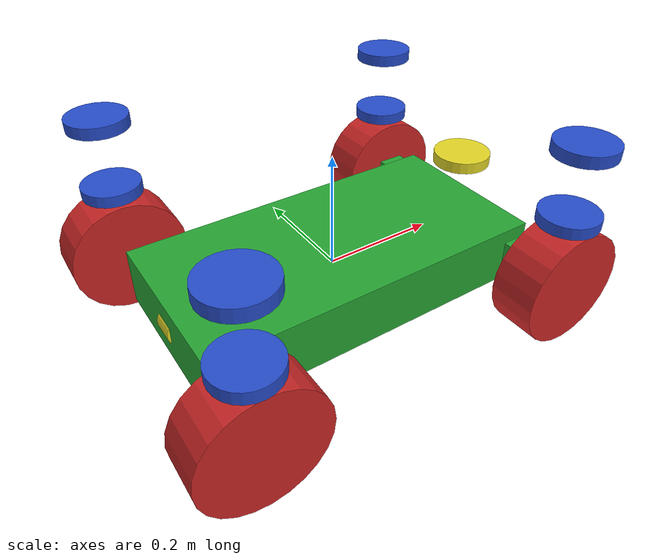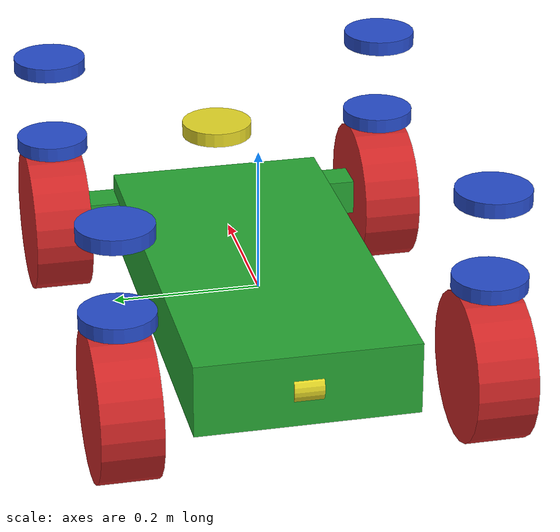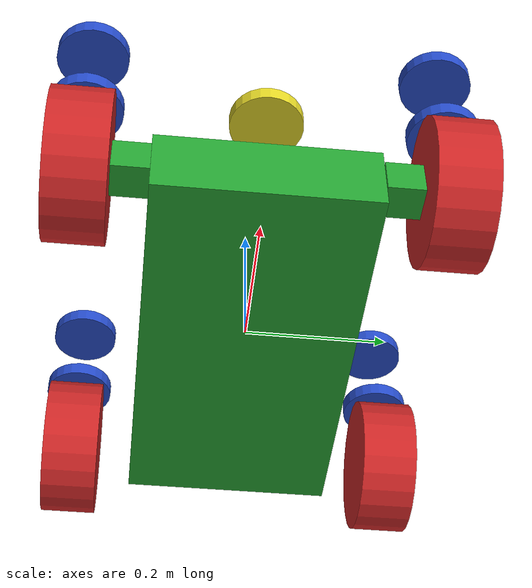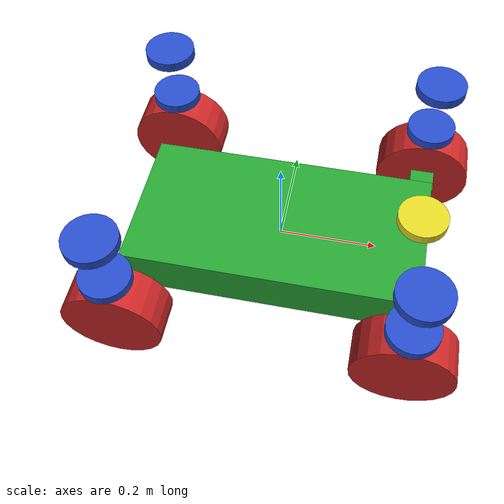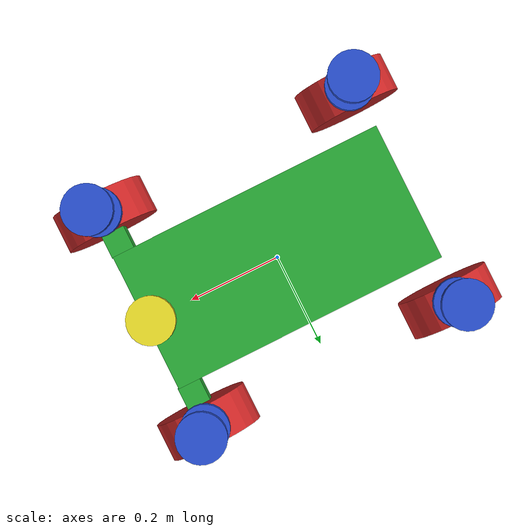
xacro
<?xml version="1.0"?>
<robot name="steer_bot" xmlns:xacro="http://wiki.ros.org/xacro">
  <!-- Include xacro for inertials, materials and wheels -->
  <xacro:include filename="$(find steer_bot_description)/urdf/wheel.xacro"/>

  <xacro:property name="robot_namespace" value="/steer_bot"/>

  <!-- Gazebo plugins -->
  <gazebo>
    <!-- Load ros_control plugin using the steer_bot_hardware_gazebo
    implementation of the hardware_interface::RobotHW -->
    <plugin name="gazebo_ros_control" filename="libgazebo_ros_control.so">
      <robotNamespace>${robot_namespace}</robotNamespace>
      <robotSimType>steer_bot_hardware_gazebo/SteerBotHardwareGazebo</robotSimType>
      <legacyModeNS>false</legacyModeNS>
    </plugin>
  </gazebo>

  <!-- Math constants -->
  <xacro:property name="deg_to_rad" value="0.01745329251994329577"/>

  <!-- Robot base dimensions -->
  <xacro:property name="base_length" value="0.6" />
  <xacro:property name="base_width" value="0.3" />
  <xacro:property name="base_height" value="0.1" />
  <xacro:property name="base_mass" value="5" />
  <!-- axle link -->
  <xacro:property name="axle_length" value="0.05"/>
  <xacro:property name="axle_mass" value="0.01"/>

  <!-- Wheel link dimensions -->
  <xacro:property name="wheel_radius" value="0.1" />
  <xacro:property name="wheel_thickness" value="0.08" />
  <xacro:property name="wheel_mass" value="1" />

  <!-- Steering link dimensions -->
  <xacro:property name="steer_radius" value="0.05" />
  <xacro:property name="steer_thickness" value="0.02" />
  <xacro:property name="steer_mass" value="1" />

  <!-- Axle positions -->
  <xacro:property name="axle_offset" value="0.09" />
  <xacro:property name="steer_offset" value="0.02" />

  <!-- Base link -->
  <link name="base_link">
    <visual>
      <origin xyz="0 0 0" rpy="0 0 0"/>
      <geometry>
        <box size="${base_length} ${base_width} ${base_height}"/>
      </geometry>
      <material name="green" />
    </visual>
    <collision>
      <origin xyz="0 0 0" rpy="0 0 0"/>
      <geometry>
        <box size="${base_length} ${base_width} ${base_height}"/>
      </geometry>
    </collision>
    <xacro:solid_cuboid_inertial
        rpy="0 0 0" xyz="0 0 0"
        mass="${base_mass}"
        x="${base_length}" y="${base_width}" z="${base_height}" />
  </link>

  <!-- Front steer and rear wheel joints required for ackermann_steering_controller -->
  <xacro:front_steer
    name="front"
    parent="base"
    steer_radius="${steer_radius}"
    steer_thickness="${steer_thickness}"
    steer_mass="${steer_mass}"
    base_length="${base_length}"
    base_width="${base_width}"
    axle_offset="${axle_offset}"
    steer_height="${wheel_radius+steer_offset}">
  </xacro:front_steer>

  <xacro:rear_wheel
    name="rear"
    parent="base"
    wheel_radius="${wheel_radius/4}"
    wheel_thickness="${wheel_thickness/2}"
    wheel_mass="${wheel_mass/32}">
    <origin xyz="${-base_length/2+steer_offset} 0 0" rpy="${-90 * deg_to_rad} 0 0"/>
  </xacro:rear_wheel>

  <!-- Steerable front wheels -->
  <xacro:front_wheel_lr
    name="front_right"
    parent="base"
    reflect="-1"
    wheel_radius="${wheel_radius}"
    wheel_thickness="${wheel_thickness}"
    wheel_mass="${wheel_mass}"
    steer_radius="${steer_radius}"
    steer_thickness="${steer_thickness}"
    steer_mass="${steer_mass}"
    axle_mass="${axle_mass}"
    axle_length="${axle_length}"
    base_length="${base_length}"
    base_width="${base_width}"
    axle_offset="${axle_offset}"
    steer_height="${wheel_radius+steer_offset}">
  </xacro:front_wheel_lr>
  <xacro:front_wheel_lr
    name="front_left"
    parent="base"
    reflect="1"
    wheel_radius="${wheel_radius}"
    axle_mass="${axle_mass}"
    axle_length="${axle_length}"
    wheel_thickness="${wheel_thickness}"
    wheel_mass="${wheel_mass}"
    steer_radius="${steer_radius}"
    steer_thickness="${steer_thickness}"
    steer_mass="${steer_mass}"
    base_length="${base_length}"
    base_width="${base_width}"
    axle_offset="${axle_offset}"
    steer_height="${wheel_radius+steer_offset}">
  </xacro:front_wheel_lr>

  <!-- Rear wheels -->
  <xacro:rear_wheel_lr
    name="rear_right"
    parent="base"
    reflect="-1"
    wheel_radius="${wheel_radius}"
    axle_mass="${axle_mass}"
    axle_length="${axle_length}"
    wheel_thickness="${wheel_thickness}"
    wheel_mass="${wheel_mass}"
    steer_radius="${steer_radius}"
    steer_thickness="${steer_thickness}"
    steer_mass="${steer_mass}"
    base_length="${base_length}"
    base_width="${base_width}"
    axle_offset="${axle_offset}"
    steer_height="${wheel_radius+steer_offset}">
  </xacro:rear_wheel_lr>
  <xacro:rear_wheel_lr
    name="rear_left"
    parent="base"
    reflect="1"
    wheel_radius="${wheel_radius}"
    axle_mass="${axle_mass}"
    axle_length="${axle_length}"
    wheel_thickness="${wheel_thickness}"
    wheel_mass="${wheel_mass}"
    steer_radius="${steer_radius}"
    steer_thickness="${steer_thickness}"
    steer_mass="${steer_mass}"
    base_length="${base_length}"
    base_width="${base_width}"
    axle_offset="${axle_offset}"
    steer_height="${wheel_radius+steer_offset}">

  </xacro:rear_wheel_lr>

  <!-- Colour -->
  <gazebo reference="base_link">
    <material>Gazebo/Green</material>
  </gazebo>

</robot>

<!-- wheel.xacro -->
<robot name="wheel" xmlns:xacro="http://wiki.ros.org/xacro">
  <!-- Include xacro for materials and inertials -->
  <xacro:include filename="$(find steer_bot_description)/urdf/materials.xacro"/>
  <xacro:include filename="$(find steer_bot_description)/urdf/inertials.xacro"/>

  <!-- Properties -->
  <xacro:property name="steer_effort" value="10.0"/>
  <xacro:property name="steer_velocity" value="5.0"/>
  <xacro:property name="steer_limit_deg" value="45.0"/>

  <!-- Bicycle model front steering link (required for steer_drive_controller) -->
  <xacro:macro name="front_steer"
    params="
      name
      parent
      steer_radius
      steer_thickness
      steer_mass
      base_length
      base_width
      axle_offset
      steer_height">
    <link name="${name}_steer_link">
      <visual>
        <origin xyz="0 0 0" rpy="0 0 0"/>
        <geometry>
          <cylinder radius="${steer_radius}" length="${steer_thickness}"/>
        </geometry>
        <material name="yellow" />
      </visual>
      <collision>
        <origin xyz="0 0 0" rpy="0 0 0"/>
        <geometry>
          <cylinder radius="${steer_radius}" length="${steer_thickness}"/>
        </geometry>
      </collision>
      <xacro:solid_cylinder_inertial
          rpy="0 0 0" xyz="0 0 0"
          mass="${steer_mass}"
          radius="${steer_radius}" length="${steer_thickness}" />
    </link>

    <joint name="${name}_steer_joint" type="revolute">
      <parent link="${parent}_link"/>
      <child link="${name}_steer_link"/>
      <origin xyz="${base_length/2-steer_offset} 0 ${steer_height}" rpy="0 0 0"/>
      <axis xyz="0 0 1"/>
      <limit effort="${steer_effort}"
             lower="${-180.0 * deg_to_rad}" upper="${180.0 * deg_to_rad}"
             velocity="${steer_velocity}"/>
    </joint>

    <transmission name="${name}_steer_joint_trans">
      <type>transmission_interface/SimpleTransmission</type>
      <actuator name="${name}_steer_joint_motor">
        <mechanicalReduction>1</mechanicalReduction>
        <hardwareInterface>hardware_interface/PositionJointInterface</hardwareInterface>
      </actuator>
      <joint name="${name}_steer_joint">
        <hardwareInterface>hardware_interface/PositionJointInterface</hardwareInterface>
      </joint>
    </transmission>

    <gazebo reference="${name}_steer_link">
      <material>Gazebo/Yellow</material>
    </gazebo>
  </xacro:macro>

  <!-- Car steering model front (steerable) wheel links (left/right) -->
  <xacro:macro name="front_wheel_lr"
    params="
      name
      parent
      reflect
      wheel_radius
      wheel_thickness
      wheel_mass
      axle_length
      axle_mass
      steer_radius
      steer_thickness
      steer_mass
      base_length
      base_width
      axle_offset
      steer_height">
    <link name="${name}_axle_link">
      <visual>
        <origin xyz="0 0 0" rpy="0 0 0"/>
        <geometry>
          <box size="${axle_length} ${axle_length} ${axle_length}"/>
        </geometry>
        <material name="green"/>
      </visual>
      <collision>
        <origin xyz="0 0 0" rpy="0 0 0"/>
        <geometry>
          <box size="${axle_length} ${axle_length} ${axle_length}"/>
        </geometry>
      </collision>
      <xacro:solid_cuboid_inertial
        rpy="0 0 0" xyz="0 0 0"
        mass="${axle_mass}"
        x="${axle_length}" y="${axle_length}" z="${axle_length}" />
    </link>

    <joint name="${name}_axle_joint" type="fixed">
      <parent link="${parent}_link"/>
      <child link="${name}_axle_link"/>
      <origin xyz="${base_length/2-steer_offset} ${reflect*(base_width/2+axle_length/2)} 0" rpy="0 0 0"/>
    </joint>

    <link name="${name}_steer_link2">
      <visual>
        <origin xyz="0 0 0" rpy="0 0 0"/>
        <geometry>
          <cylinder radius="${steer_radius}" length="${steer_thickness}"/>
        </geometry>
        <material name="blue" />
      </visual>
      <collision>
        <origin xyz="0 0 0" rpy="0 0 0"/>
        <geometry>
          <cylinder radius="${steer_radius}" length="${steer_thickness}"/>
        </geometry>
      </collision>
      <xacro:solid_cylinder_inertial
          rpy="0 0 0" xyz="0 0 0"
          mass="${steer_mass}"
          radius="${steer_radius}" length="${steer_thickness}" />
    </link>

    <joint name="${name}_steer_joint" type="revolute">
      <parent link="${parent}_link"/>
      <child link="${name}_steer_link2"/>
      <origin xyz="${base_length/2-steer_offset} ${reflect*(base_width/2+axle_offset)} ${steer_height*2}" rpy="0 0 0"/>
      <axis xyz="0 0 1"/>
      <limit effort="${steer_effort}"
             lower="${steer_limit_deg * deg_to_rad * -1.0}" upper="${steer_limit_deg * deg_to_rad}"
             velocity="${steer_velocity}"/>
    </joint>

    <link name="${name}_steer_link">
      <visual>
        <origin xyz="0 0 0" rpy="0 0 0"/>
        <geometry>
          <cylinder radius="${steer_radius}" length="${steer_thickness}"/>
        </geometry>
        <material name="blue" />
      </visual>
      <collision>
        <origin xyz="0 0 0" rpy="0 0 0"/>
        <geometry>
          <cylinder radius="${steer_radius}" length="${steer_thickness}"/>
        </geometry>
      </collision>
      <xacro:solid_cylinder_inertial
          rpy="0 0 0" xyz="0 0 0"
          mass="${steer_mass}"
          radius="${steer_radius}" length="${steer_thickness}" />
    </link>

    <joint name="${name}_shock_absorber" type="prismatic">
      <parent link="${name}_steer_link2"/>
      <child link="${name}_steer_link"/>
      <origin xyz="0 0 ${-steer_height}" rpy="0 0 0"/>
      <axis xyz="0 0 1"/>
      <limit lower="-0.03" upper="0" effort="-1" velocity="-1"/>
      <dynamics damping="5" spring_stiffness="100" spring_reference="0.12" friction="0.001"/>
    </joint>

    <transmission name="${name}_shock_trans">
      <type>transmission_interface/SimpleTransmission</type>
      <joint name="${name}_shock_absorber">
        <hardwareInterface>hardware_interface/EffortJointInterface</hardwareInterface>
      </joint>
      <actuator name="${name}_shock_act">
        <hardwareInterface>hardware_interface/EffortJointInterface</hardwareInterface>
        <mechanicalReduction>1</mechanicalReduction>
      </actuator>
    </transmission>

    <link name="${name}_wheel_link">
      <visual>
        <origin xyz="0 0 0" rpy="0 0 0"/>
        <geometry>
          <cylinder radius="${wheel_radius}" length="${wheel_thickness}"/>
        </geometry>
        <material name="red" />
      </visual>
      <collision>
        <origin xyz="0 0 0" rpy="0 0 0"/>
        <geometry>
          <cylinder radius="${wheel_radius}" length="${wheel_thickness}"/>
        </geometry>
      </collision>
      <xacro:solid_cylinder_inertial
          rpy="0 0 0" xyz="0 0 0"
          mass="${wheel_mass}"
          radius="${wheel_radius}" length="${wheel_thickness}" />
    </link>

    <joint name="${name}_wheel_joint" type="continuous">
      <parent link="${name}_steer_link"/>
      <child link="${name}_wheel_link"/>
      <origin xyz="0 0 ${-steer_height}" rpy="${-90 * deg_to_rad} 0 0"/>
      <axis xyz="0 0 1"/>
    </joint>

    <transmission name="${name}_steer_joint_trans">
      <type>transmission_interface/SimpleTransmission</type>
      <actuator name="${name}_steer_joint_motor">
        <mechanicalReduction>1</mechanicalReduction>
        <hardwareInterface>hardware_interface/PositionJointInterface</hardwareInterface>
      </actuator>
      <joint name="${name}_steer_joint">
        <hardwareInterface>hardware_interface/PositionJointInterface</hardwareInterface>
      </joint>
    </transmission>

    <transmission name="${name}_wheel_joint_trans">
      <type>transmission_interface/SimpleTransmission</type>
      <actuator name="${name}_wheel_joint_motor">
        <mechanicalReduction>1</mechanicalReduction>
        <hardwareInterface>hardware_interface/VelocityJointInterface</hardwareInterface>
      </actuator>
      <joint name="${name}_wheel_joint">
        <hardwareInterface>hardware_interface/VelocityJointInterface</hardwareInterface>
      </joint>
    </transmission>

    <gazebo reference="${name}_steer_link">
      <material>Gazebo/Blue</material>
    </gazebo>

    <gazebo reference="${name}_wheel_link">
      <material>Gazebo/Red</material>
    </gazebo>
  </xacro:macro>

  <!-- Bicycle model rear wheel link (required for steer_drive_controller) -->
  <xacro:macro name="rear_wheel"
    params="
      name
      parent
      wheel_radius
      wheel_thickness
      wheel_mass
      *origin">
    <link name="${name}_wheel_link">
      <visual>
        <origin xyz="0 0 0" rpy="0 0 0"/>
        <geometry>
          <cylinder radius="${wheel_radius}" length="${wheel_thickness}"/>
        </geometry>
        <material name="yellow" />
      </visual>
      <collision>
        <origin xyz="0 0 0" rpy="0 0 0"/>
        <geometry>
          <cylinder radius="${wheel_radius}" length="${wheel_thickness}"/>
        </geometry>
      </collision>
      <xacro:solid_cylinder_inertial
          rpy="0 0 0" xyz="0 0 0"
          mass="${wheel_mass}"
          radius="${wheel_radius}" length="${wheel_thickness}" />
    </link>

    <joint name="${name}_wheel_joint" type="continuous">
      <parent link="${parent}_link"/>
      <child link="${name}_wheel_link"/>
      <xacro:insert_block name="origin"/>
      <axis xyz="0 0 1"/>
    </joint>

    <transmission name="${name}_wheel_joint_trans">
      <type>transmission_interface/SimpleTransmission</type>
      <actuator name="${name}_wheel_joint_motor">
        <mechanicalReduction>1</mechanicalReduction>
        <hardwareInterface>hardware_interface/VelocityJointInterface</hardwareInterface>
      </actuator>
      <joint name="${name}_wheel_joint">
        <hardwareInterface>hardware_interface/VelocityJointInterface</hardwareInterface>
      </joint>
    </transmission>

    <gazebo reference="${name}_wheel_link">
      <material>Gazebo/Yellow</material>
    </gazebo>
  </xacro:macro>

  <!-- Bicycle model front wheel link (passive - no transmission) -->
  <xacro:macro name="front_wheel"
    params="
      name
      parent
      wheel_radius
      wheel_thickness
      wheel_mass
      *origin">
    <link name="${name}_wheel_link">
      <visual>
        <origin xyz="0 0 0" rpy="0 0 0"/>
        <geometry>
          <cylinder radius="${wheel_radius}" length="${wheel_thickness}"/>
        </geometry>
        <material name="yellow" />
      </visual>
      <collision>
        <origin xyz="0 0 0" rpy="0 0 0"/>
        <geometry>
          <cylinder radius="${wheel_radius}" length="${wheel_thickness}"/>
        </geometry>
      </collision>
      <xacro:solid_cylinder_inertial
          rpy="0 0 0" xyz="0 0 0"
          mass="${wheel_mass}"
          radius="${wheel_radius}" length="${wheel_thickness}" />
    </link>

    <joint name="${name}_wheel_joint" type="continuous">
      <parent link="${parent}_link"/>
      <child link="${name}_wheel_link"/>
      <xacro:insert_block name="origin"/>
      <axis xyz="0 0 1"/>
    </joint>

    <gazebo reference="${name}_wheel_link">
      <material>Gazebo/Yellow</material>
    </gazebo>

    <gazebo reference="${name}_wheel_joint">
      <provideFeedback>true</provideFeedback>
    </gazebo>
  </xacro:macro>

  <!-- Car steering model rear wheel links (left/right) -->
     <xacro:macro name="rear_wheel_lr"
    params="
      name
      parent
      reflect
      wheel_radius
      wheel_thickness
      wheel_mass
      axle_length
      axle_mass
      steer_radius
      steer_thickness
      steer_mass
      base_length
      base_width
      axle_offset
      steer_height">
    <link name="${name}_axle_link">
      <visual>
        <origin xyz="0 0 0" rpy="0 0 0"/>
        <geometry>
          <box size="${axle_length} ${axle_length} ${axle_length}"/>
        </geometry>
        <material name="green"/>
      </visual>
      <collision>
        <origin xyz="0 0 0" rpy="0 0 0"/>
        <geometry>
          <box size="${axle_length} ${axle_length} ${axle_length}"/>
        </geometry>
      </collision>
      <xacro:solid_cuboid_inertial
        rpy="0 0 0" xyz="0 0 0"
        mass="${axle_mass}"
        x="${axle_length}" y="${axle_length}" z="${axle_length}" />
    </link>

    <joint name="${name}_axle_joint" type="fixed">
      <parent link="${parent}_link"/>
      <child link="${name}_axle_link"/>
      <origin xyz="${base_length/2-steer_offset} ${reflect*(base_width/2+axle_length/2)} 0" rpy="0 0 0"/>
    </joint>

    <link name="${name}_steer_link2">
      <visual>
        <origin xyz="0 0 0" rpy="0 0 0"/>
        <geometry>
          <cylinder radius="${steer_radius}" length="${steer_thickness}"/>
        </geometry>
        <material name="blue" />
      </visual>
      <collision>
        <origin xyz="0 0 0" rpy="0 0 0"/>
        <geometry>
          <cylinder radius="${steer_radius}" length="${steer_thickness}"/>
        </geometry>
      </collision>
      <xacro:solid_cylinder_inertial
          rpy="0 0 0" xyz="0 0 0"
          mass="${steer_mass}"
          radius="${steer_radius}" length="${steer_thickness}" />
    </link>

    <joint name="${name}_steer_joint" type="fixed">
      <parent link="${parent}_link"/>
      <child link="${name}_steer_link2"/>
      <origin xyz="${-base_length/2+steer_offset} ${reflect*(base_width/2+axle_offset)} ${steer_height*2}" rpy="0 0 0"/>
      <axis xyz="0 0 1"/>
    </joint>

    <link name="${name}_steer_link">
      <visual>
        <origin xyz="0 0 0" rpy="0 0 0"/>
        <geometry>
          <cylinder radius="${steer_radius}" length="${steer_thickness}"/>
        </geometry>
        <material name="blue" />
      </visual>
      <collision>
        <origin xyz="0 0 0" rpy="0 0 0"/>
        <geometry>
          <cylinder radius="${steer_radius}" length="${steer_thickness}"/>
        </geometry>
      </collision>
      <xacro:solid_cylinder_inertial
          rpy="0 0 0" xyz="0 0 0"
          mass="${steer_mass}"
          radius="${steer_radius}" length="${steer_thickness}" />
    </link>

    <joint name="${name}_shock_absorber" type="prismatic">
      <parent link="${name}_steer_link2"/>
      <child link="${name}_steer_link"/>
      <origin xyz="0 0 ${-steer_height}" rpy="0 0 0"/>
      <axis xyz="0 0 1"/>
      <limit lower="-0.03" upper="0" effort="-1" velocity="-1"/>
      <dynamics damping="5" spring_stiffness="100" spring_reference="0.12" friction="0.001"/>
    </joint>

    <transmission name="${name}_shock_trans">
      <type>transmission_interface/SimpleTransmission</type>
      <joint name="${name}_shock_absorber">
        <hardwareInterface>hardware_interface/EffortJointInterface</hardwareInterface>
      </joint>
      <actuator name="${name}_shock_act">
        <hardwareInterface>hardware_interface/EffortJointInterface</hardwareInterface>
        <mechanicalReduction>1</mechanicalReduction>
      </actuator>
    </transmission>

    <link name="${name}_wheel_link">
      <visual>
        <origin xyz="0 0 0" rpy="0 0 0"/>
        <geometry>
          <cylinder radius="${wheel_radius}" length="${wheel_thickness}"/>
        </geometry>
        <material name="red" />
      </visual>
      <collision>
        <origin xyz="0 0 0" rpy="0 0 0"/>
        <geometry>
          <cylinder radius="${wheel_radius}" length="${wheel_thickness}"/>
        </geometry>
      </collision>
      <xacro:solid_cylinder_inertial
          rpy="0 0 0" xyz="0 0 0"
          mass="${wheel_mass}"
          radius="${wheel_radius}" length="${wheel_thickness}" />
    </link>

    <joint name="${name}_wheel_joint" type="continuous">
      <parent link="${name}_steer_link"/>
      <child link="${name}_wheel_link"/>
      <origin xyz="0 0 ${-steer_height}" rpy="${-90 * deg_to_rad} 0 0"/>
      <axis xyz="0 0 1"/>
    </joint>

    <transmission name="${name}_steer_joint_trans">
      <type>transmission_interface/SimpleTransmission</type>
      <actuator name="${name}_steer_joint_motor">
        <mechanicalReduction>1</mechanicalReduction>
        <hardwareInterface>hardware_interface/PositionJointInterface</hardwareInterface>
      </actuator>
      <joint name="${name}_steer_joint">
        <hardwareInterface>hardware_interface/PositionJointInterface</hardwareInterface>
      </joint>
    </transmission>

    <transmission name="${name}_wheel_joint_trans">
      <type>transmission_interface/SimpleTransmission</type>
      <actuator name="${name}_wheel_joint_motor">
        <mechanicalReduction>1</mechanicalReduction>
        <hardwareInterface>hardware_interface/VelocityJointInterface</hardwareInterface>
      </actuator>
      <joint name="${name}_wheel_joint">
        <hardwareInterface>hardware_interface/VelocityJointInterface</hardwareInterface>
      </joint>
    </transmission>

    <gazebo reference="${name}_steer_link">
      <material>Gazebo/Blue</material>
    </gazebo>

    <gazebo reference="${name}_wheel_link">
      <material>Gazebo/Red</material>
    </gazebo>

  </xacro:macro>
</robot>
